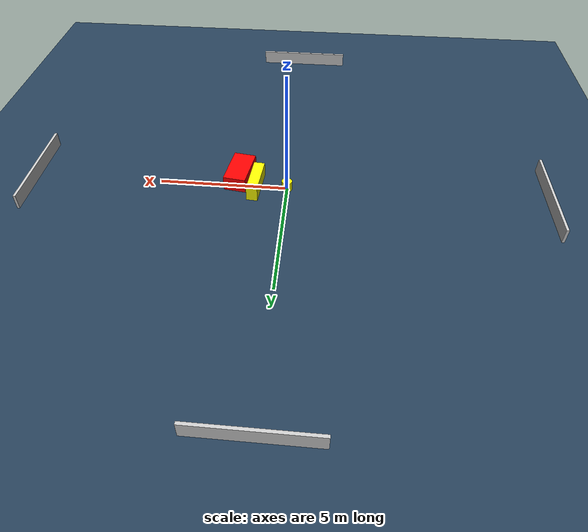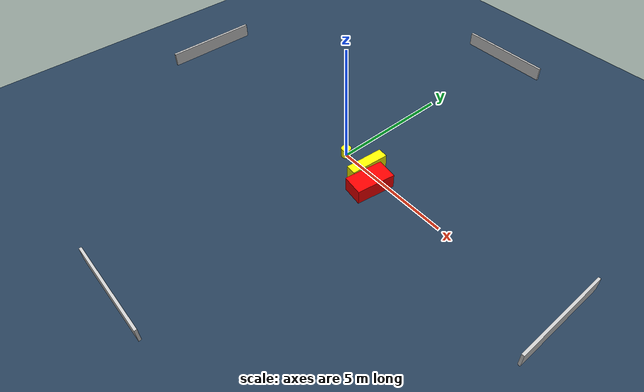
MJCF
<?xml version="1.0" ?>
<mujoco model="generated_environment">
  <option timestep="0.01" integrator="RK4" cone="elliptic"/>
  <default>
    <geom density="1"/>
  </default>
  <asset>
    <texture builtin="gradient" height="3072" name="skybox" rgb1="0.3 0.5 0.7" rgb2="0 0 0" type="skybox" width="512"/>
    <texture builtin="checker" height="300" name="groundplane" rgb1="0.2 0.3 0.4" rgb2="0.1 0.2 0.3" type="2d" width="300"/>
    <material name="groundplane" reflectance="0.2" texrepeat="5 5" texture="groundplane"/>
  </asset>
  <worldbody>
    <light dir="0 0 -1" directional="true" pos="0 0 1.5"/>
    <geom condim="3" friction="0.5 0.005 0.001" material="groundplane" name="floor" pos="0 0 0" size="0 0 0.05" type="plane"/>
    <body name="walls">
      <geom name="wall_1" condim="4" pos="-10.0 0.0 0.3" rgba="0.800000011920929 0.800000011920929 0.800000011920929 1.0" size="0.05 2.0 0.3" type="box"/>
      <geom name="wall_2" condim="4" pos="10.0 0.0 0.3" rgba="0.800000011920929 0.800000011920929 0.800000011920929 1.0" size="0.05 2.0 0.3" type="box"/>
      <geom name="wall_3" condim="4" pos="0.0 -10.0 0.3" rgba="0.800000011920929 0.800000011920929 0.800000011920929 1.0" size="2.0 0.05 0.3" type="box"/>
      <geom name="wall_4" condim="4" pos="0.0 10.0 0.3" rgba="0.800000011920929 0.800000011920929 0.800000011920929 1.0" size="2.0 0.05 0.3" type="box"/>
    </body>
    <body name="robot">
      <joint name="joint_x" type="slide" pos="0 0 0" axis="1 0 0"/>
      <joint name="joint_y" type="slide" pos="0 0 0" axis="0 1 0"/>
      <geom name="robot" type="cylinder" pos="0.0 0.0 0.2" size="0.2 0.2 0.0" mass="5.0" friction="1.0 0.005 0.0001" condim="4" rgba="1.0 1.0 0.0 1.0"/>
    </body>
    <body name="obstacle_1_movable">
      <geom name="obstacle_1_movable" condim="4" pos="1.2255484944685895 -0.01238219669685034 0.3" euler="0 0 265.75009205643727" friction="0.0 0.005 0.001" rgba="1.0 1.0 0.0 1.0" size="0.7893085071799923 0.2146812032218043 0.3" type="box" mass="0.1"/>
      <joint type="free"/>
    </body>
    <body name="obstacle_2_static">
      <geom name="obstacle_2_static" condim="4" pos="1.914080195819876 -0.49859909205629477 0.3" euler="0 0 352.0752792304736" friction="0.0 0.005 0.001" rgba="1.0 0.0 0.0 1.0" size="0.4361478768923699 0.7990182142385487 0.3" type="box"/>
    </body>
  </worldbody>
  <actuator>
    <motor name="actuator_x" joint="joint_x" gear="1" ctrlrange="-1 1"/>
    <motor name="actuator_y" joint="joint_y" gear="1" ctrlrange="-1 1"/>
  </actuator>
</mujoco>
